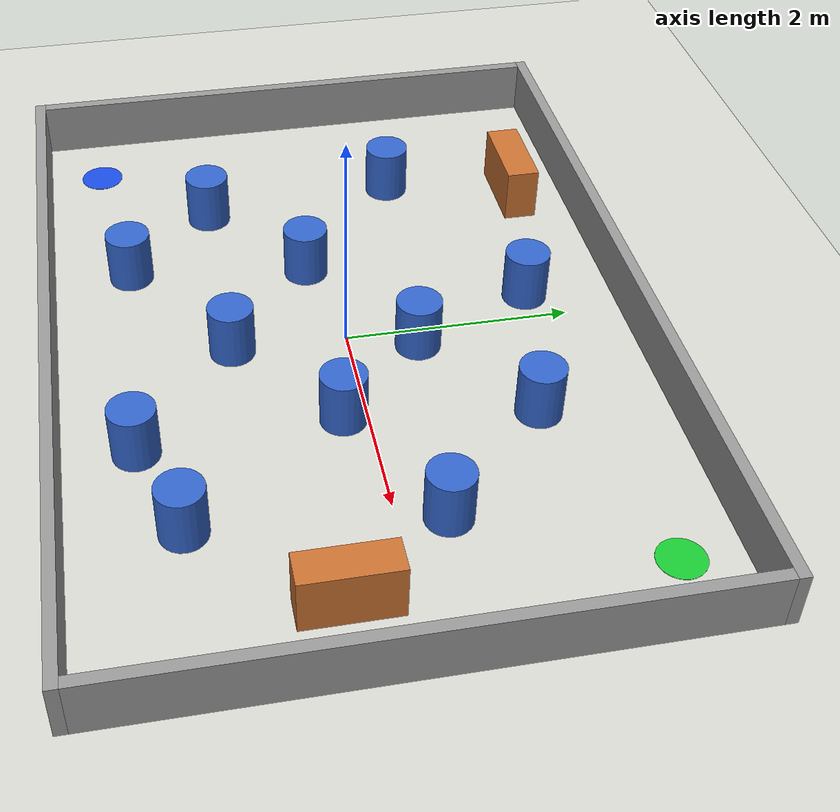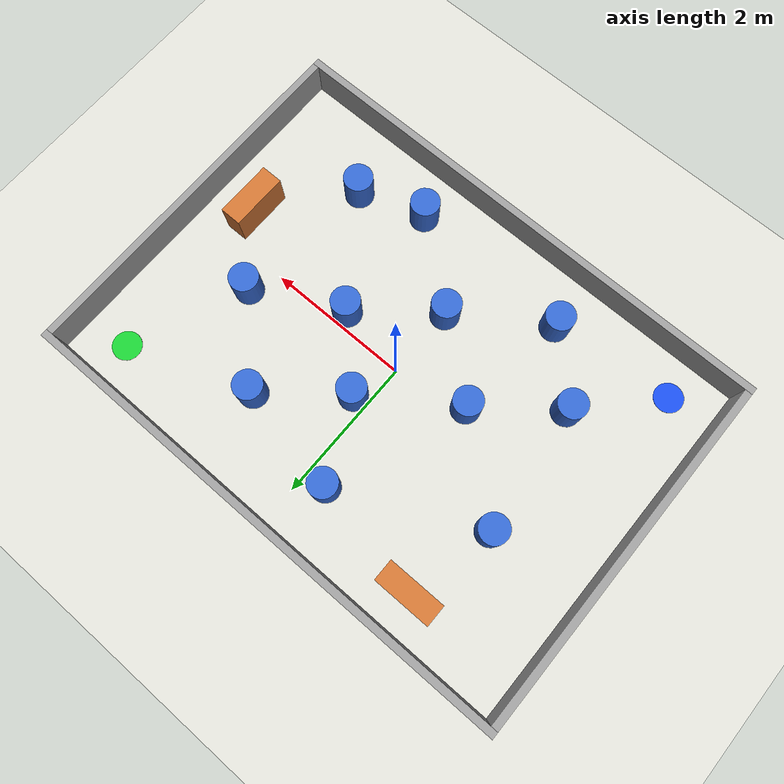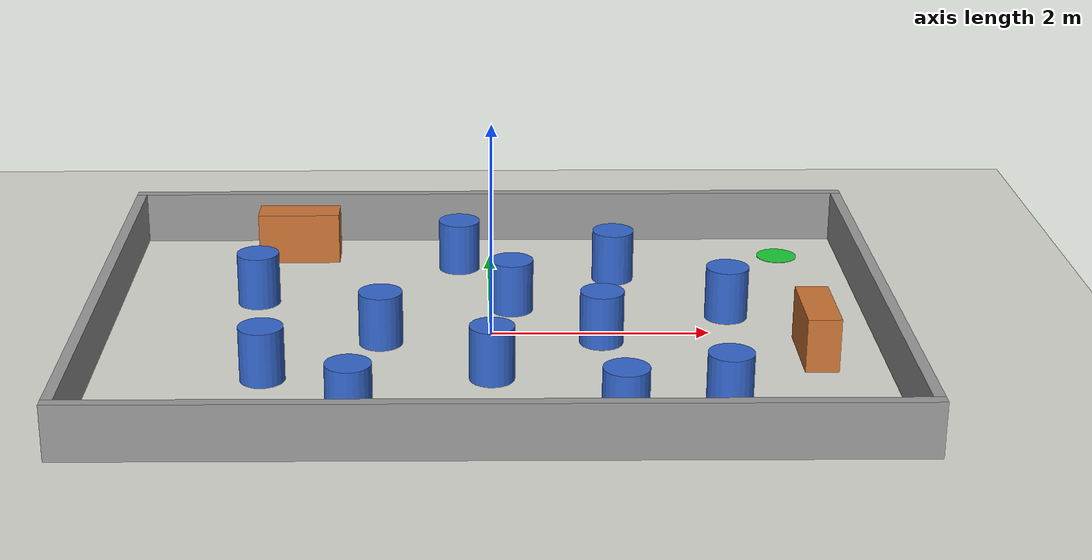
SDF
<?xml version="1.0"?>
<!-- AUTO-GENERATED by tb3_nav_task/worlds.py (cluttered): Dense clutter: 12 pillars + 2 blocks, gaps 0.5-0.8 m. Edit the Python spec, not this file. -->
<sdf version="1.8">
  <world name="cluttered">
    <physics name="default_physics" type="dart">
      <max_step_size>0.002</max_step_size>
      <real_time_factor>1.0</real_time_factor>
      <real_time_update_rate>500</real_time_update_rate>
    </physics>
    <plugin filename="gz-sim-physics-system" name="gz::sim::systems::Physics"/>
    <plugin filename="gz-sim-user-commands-system" name="gz::sim::systems::UserCommands"/>
    <plugin filename="gz-sim-scene-broadcaster-system" name="gz::sim::systems::SceneBroadcaster"/>
    <plugin filename="gz-sim-sensors-system" name="gz::sim::systems::Sensors">
      <render_engine>ogre2</render_engine>
    </plugin>
    <plugin filename="gz-sim-imu-system" name="gz::sim::systems::Imu"/>
    <scene>
      <ambient>0.6 0.6 0.6 1</ambient>
      <background>0.75 0.8 0.9 1</background>
      <shadows>false</shadows>
    </scene>
    <light type="directional" name="sun">
      <cast_shadows>false</cast_shadows>
      <pose>0 0 10 0 0 0</pose>
      <diffuse>0.9 0.9 0.9 1</diffuse>
      <specular>0.2 0.2 0.2 1</specular>
      <direction>-0.3 0.2 -0.9</direction>
    </light>
    <model name="ground_plane">
      <static>true</static>
      <link name="link">
        <collision name="c"><geometry><plane><normal>0 0 1</normal><size>20 20</size></plane></geometry></collision>
        <visual name="v"><geometry><plane><normal>0 0 1</normal><size>20 20</size></plane></geometry><material><ambient>0.85 0.85 0.82 1</ambient><diffuse>0.85 0.85 0.82 1</diffuse><specular>0.1 0.1 0.1 1</specular></material></visual>
      </link>
    </model>
    <model name="wall_north"><static>true</static><pose>0.0 2.55 0.25 0 0 0.0</pose><link name="link"><collision name="c"><geometry><box><size>7.2 0.1 0.5</size></box></geometry></collision><visual name="v"><geometry><box><size>7.2 0.1 0.5</size></box></geometry><material><ambient>0.6 0.6 0.6 1</ambient><diffuse>0.6 0.6 0.6 1</diffuse><specular>0.1 0.1 0.1 1</specular></material></visual></link></model>
    <model name="wall_south"><static>true</static><pose>0.0 -2.55 0.25 0 0 0.0</pose><link name="link"><collision name="c"><geometry><box><size>7.2 0.1 0.5</size></box></geometry></collision><visual name="v"><geometry><box><size>7.2 0.1 0.5</size></box></geometry><material><ambient>0.6 0.6 0.6 1</ambient><diffuse>0.6 0.6 0.6 1</diffuse><specular>0.1 0.1 0.1 1</specular></material></visual></link></model>
    <model name="wall_east"><static>true</static><pose>3.55 0.0 0.25 0 0 0.0</pose><link name="link"><collision name="c"><geometry><box><size>0.1 5.0 0.5</size></box></geometry></collision><visual name="v"><geometry><box><size>0.1 5.0 0.5</size></box></geometry><material><ambient>0.6 0.6 0.6 1</ambient><diffuse>0.6 0.6 0.6 1</diffuse><specular>0.1 0.1 0.1 1</specular></material></visual></link></model>
    <model name="wall_west"><static>true</static><pose>-3.55 0.0 0.25 0 0 0.0</pose><link name="link"><collision name="c"><geometry><box><size>0.1 5.0 0.5</size></box></geometry></collision><visual name="v"><geometry><box><size>0.1 5.0 0.5</size></box></geometry><material><ambient>0.6 0.6 0.6 1</ambient><diffuse>0.6 0.6 0.6 1</diffuse><specular>0.1 0.1 0.1 1</specular></material></visual></link></model>
    <model name="c01"><static>true</static><pose>-2.0 -1.0 0.25 0 0 0</pose><link name="link"><collision name="c"><geometry><cylinder><radius>0.2</radius><length>0.5</length></cylinder></geometry></collision><visual name="v"><geometry><cylinder><radius>0.2</radius><length>0.5</length></cylinder></geometry><material><ambient>0.2 0.4 0.8 1</ambient><diffuse>0.2 0.4 0.8 1</diffuse><specular>0.1 0.1 0.1 1</specular></material></visual></link></model>
    <model name="c02"><static>true</static><pose>-1.2 -1.8 0.25 0 0 0</pose><link name="link"><collision name="c"><geometry><cylinder><radius>0.2</radius><length>0.5</length></cylinder></geometry></collision><visual name="v"><geometry><cylinder><radius>0.2</radius><length>0.5</length></cylinder></geometry><material><ambient>0.2 0.4 0.8 1</ambient><diffuse>0.2 0.4 0.8 1</diffuse><specular>0.1 0.1 0.1 1</specular></material></visual></link></model>
    <model name="c03"><static>true</static><pose>-1.0 -0.2 0.25 0 0 0</pose><link name="link"><collision name="c"><geometry><cylinder><radius>0.2</radius><length>0.5</length></cylinder></geometry></collision><visual name="v"><geometry><cylinder><radius>0.2</radius><length>0.5</length></cylinder></geometry><material><ambient>0.2 0.4 0.8 1</ambient><diffuse>0.2 0.4 0.8 1</diffuse><specular>0.1 0.1 0.1 1</specular></material></visual></link></model>
    <model name="c04"><static>true</static><pose>-2.2 0.8 0.25 0 0 0</pose><link name="link"><collision name="c"><geometry><cylinder><radius>0.2</radius><length>0.5</length></cylinder></geometry></collision><visual name="v"><geometry><cylinder><radius>0.2</radius><length>0.5</length></cylinder></geometry><material><ambient>0.2 0.4 0.8 1</ambient><diffuse>0.2 0.4 0.8 1</diffuse><specular>0.1 0.1 0.1 1</specular></material></visual></link></model>
    <model name="c05"><static>true</static><pose>0.0 -1.0 0.25 0 0 0</pose><link name="link"><collision name="c"><geometry><cylinder><radius>0.2</radius><length>0.5</length></cylinder></geometry></collision><visual name="v"><geometry><cylinder><radius>0.2</radius><length>0.5</length></cylinder></geometry><material><ambient>0.2 0.4 0.8 1</ambient><diffuse>0.2 0.4 0.8 1</diffuse><specular>0.1 0.1 0.1 1</specular></material></visual></link></model>
    <model name="c06"><static>true</static><pose>0.2 0.6 0.25 0 0 0</pose><link name="link"><collision name="c"><geometry><cylinder><radius>0.2</radius><length>0.5</length></cylinder></geometry></collision><visual name="v"><geometry><cylinder><radius>0.2</radius><length>0.5</length></cylinder></geometry><material><ambient>0.2 0.4 0.8 1</ambient><diffuse>0.2 0.4 0.8 1</diffuse><specular>0.1 0.1 0.1 1</specular></material></visual></link></model>
    <model name="c07"><static>true</static><pose>-0.3 1.7 0.25 0 0 0</pose><link name="link"><collision name="c"><geometry><cylinder><radius>0.2</radius><length>0.5</length></cylinder></geometry></collision><visual name="v"><geometry><cylinder><radius>0.2</radius><length>0.5</length></cylinder></geometry><material><ambient>0.2 0.4 0.8 1</ambient><diffuse>0.2 0.4 0.8 1</diffuse><specular>0.1 0.1 0.1 1</specular></material></visual></link></model>
    <model name="c08"><static>true</static><pose>1.0 -0.2 0.25 0 0 0</pose><link name="link"><collision name="c"><geometry><cylinder><radius>0.2</radius><length>0.5</length></cylinder></geometry></collision><visual name="v"><geometry><cylinder><radius>0.2</radius><length>0.5</length></cylinder></geometry><material><ambient>0.2 0.4 0.8 1</ambient><diffuse>0.2 0.4 0.8 1</diffuse><specular>0.1 0.1 0.1 1</specular></material></visual></link></model>
    <model name="c09"><static>true</static><pose>1.2 1.4 0.25 0 0 0</pose><link name="link"><collision name="c"><geometry><cylinder><radius>0.2</radius><length>0.5</length></cylinder></geometry></collision><visual name="v"><geometry><cylinder><radius>0.2</radius><length>0.5</length></cylinder></geometry><material><ambient>0.2 0.4 0.8 1</ambient><diffuse>0.2 0.4 0.8 1</diffuse><specular>0.1 0.1 0.1 1</specular></material></visual></link></model>
    <model name="c10"><static>true</static><pose>2.2 0.4 0.25 0 0 0</pose><link name="link"><collision name="c"><geometry><cylinder><radius>0.2</radius><length>0.5</length></cylinder></geometry></collision><visual name="v"><geometry><cylinder><radius>0.2</radius><length>0.5</length></cylinder></geometry><material><ambient>0.2 0.4 0.8 1</ambient><diffuse>0.2 0.4 0.8 1</diffuse><specular>0.1 0.1 0.1 1</specular></material></visual></link></model>
    <model name="c11"><static>true</static><pose>2.0 -1.6 0.25 0 0 0</pose><link name="link"><collision name="c"><geometry><cylinder><radius>0.2</radius><length>0.5</length></cylinder></geometry></collision><visual name="v"><geometry><cylinder><radius>0.2</radius><length>0.5</length></cylinder></geometry><material><ambient>0.2 0.4 0.8 1</ambient><diffuse>0.2 0.4 0.8 1</diffuse><specular>0.1 0.1 0.1 1</specular></material></visual></link></model>
    <model name="c12"><static>true</static><pose>1.1 -1.9 0.25 0 0 0</pose><link name="link"><collision name="c"><geometry><cylinder><radius>0.2</radius><length>0.5</length></cylinder></geometry></collision><visual name="v"><geometry><cylinder><radius>0.2</radius><length>0.5</length></cylinder></geometry><material><ambient>0.2 0.4 0.8 1</ambient><diffuse>0.2 0.4 0.8 1</diffuse><specular>0.1 0.1 0.1 1</specular></material></visual></link></model>
    <model name="block_n"><static>true</static><pose>-1.9 2.0 0.25 0 0 0.0</pose><link name="link"><collision name="c"><geometry><box><size>0.8 0.3 0.5</size></box></geometry></collision><visual name="v"><geometry><box><size>0.8 0.3 0.5</size></box></geometry><material><ambient>0.8 0.45 0.2 1</ambient><diffuse>0.8 0.45 0.2 1</diffuse><specular>0.1 0.1 0.1 1</specular></material></visual></link></model>
    <model name="block_e"><static>true</static><pose>2.9 -0.5 0.25 0 0 0.0</pose><link name="link"><collision name="c"><geometry><box><size>0.3 0.8 0.5</size></box></geometry></collision><visual name="v"><geometry><box><size>0.3 0.8 0.5</size></box></geometry><material><ambient>0.8 0.45 0.2 1</ambient><diffuse>0.8 0.45 0.2 1</diffuse><specular>0.1 0.1 0.1 1</specular></material></visual></link></model>
    <model name="start_marker"><static>true</static><pose>-2.9 -2.0 0.002 0 0 0</pose><link name="link"><visual name="v"><geometry><cylinder><radius>0.2</radius><length>0.004</length></cylinder></geometry><material><ambient>0.1 0.3 0.9 1</ambient><diffuse>0.1 0.3 0.9 1</diffuse><specular>0.1 0.1 0.1 1</specular></material><cast_shadows>false</cast_shadows></visual></link></model>
    <model name="goal_marker"><static>true</static><pose>2.9 2.0 0.002 0 0 0</pose><link name="link"><visual name="v"><geometry><cylinder><radius>0.2</radius><length>0.004</length></cylinder></geometry><material><ambient>0.1 0.8 0.2 1</ambient><diffuse>0.1 0.8 0.2 1</diffuse><specular>0.1 0.1 0.1 1</specular></material><cast_shadows>false</cast_shadows></visual></link></model>
  </world>
</sdf>
